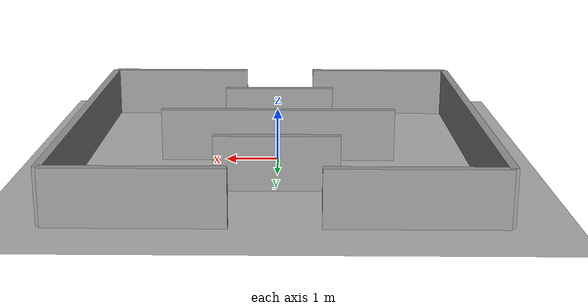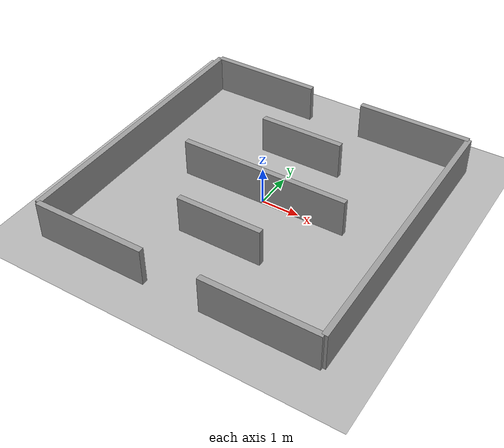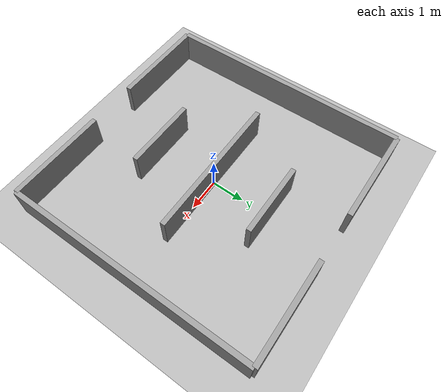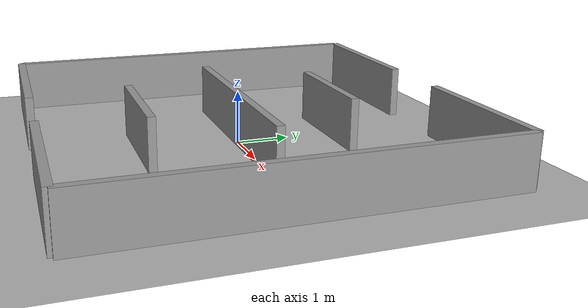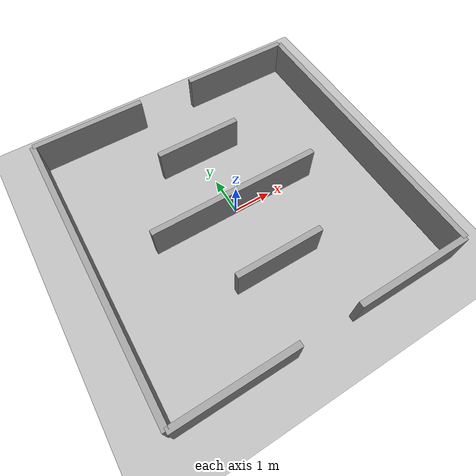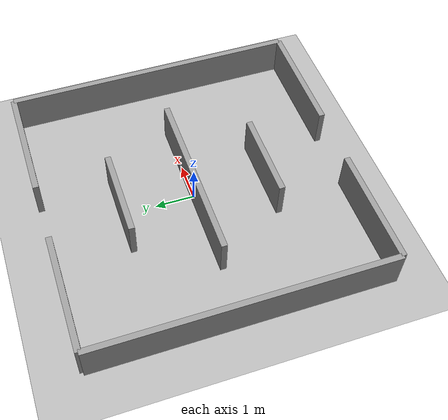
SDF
<?xml version="1.0" ?>
<sdf version="1.10">
  <world name="maze_world">

    <plugin
      filename="gz-sim-physics-system"
      name="gz::sim::systems::Physics">
    </plugin>

    <plugin
      filename="gz-sim-user-commands-system"
      name="gz::sim::systems::UserCommands">
    </plugin>

    <plugin
      filename="gz-sim-scene-broadcaster-system"
      name="gz::sim::systems::SceneBroadcaster">
    </plugin>

    <!-- Lighting -->
    <light type="directional" name="sun">
      <pose>0 0 10 0 0 0</pose>
      <diffuse>0.8 0.8 0.8 1</diffuse>
      <specular>0.2 0.2 0.2 1</specular>
      <direction>-0.5 0.1 -0.9</direction>
    </light>

    <!-- Ground plane -->
    <model name="ground_plane">
      <static>true</static>
      <link name="link">
        <collision name="collision">
          <geometry>
            <plane><normal>0 0 1</normal></plane>
          </geometry>
        </collision>
        <visual name="visual">
          <geometry>
            <plane>
              <normal>0 0 1</normal>
              <size>60 60</size>
            </plane>
          </geometry>
          <material>
            <diffuse>0.7 0.7 0.7 1</diffuse>
          </material>
        </visual>
      </link>
    </model>

    <!-- Maze walls -->
    <!-- Top Left Wall -->
    <model name="wall_top_left">
      <static>true</static>
      <pose>-2.25 3.75 0.5 0 0 0</pose>
      <link name="link">
        <collision name="collision">
          <geometry>
            <box><size>3.0 0.15 1</size></box>
          </geometry>
        </collision>
        <visual name="visual">
          <geometry>
            <box><size>3.0 0.15 1</size></box>
          </geometry>
          <material><diffuse>0.6 0.6 0.6 1</diffuse></material>
        </visual>
      </link>
    </model>

    <!-- Top Right Wall -->
    <model name="wall_top_right">
      <static>true</static>
      <pose>2.25 3.75 0.5 0 0 0</pose>
      <link name="link">
        <collision name="collision">
          <geometry>
            <box><size>3.0 0.15 1</size></box>
          </geometry>
        </collision>
        <visual name="visual">
          <geometry>
            <box><size>3.0 0.15 1</size></box>
          </geometry>
          <material><diffuse>0.6 0.6 0.6 1</diffuse></material>
        </visual>
      </link>
    </model>

    <!-- Bottom Left Wall -->
    <model name="wall_bottom_left">
      <static>true</static>
      <pose>-2.25 -3.75 0.5 0 0 0</pose>
      <link name="link">
        <collision name="collision">
          <geometry>
            <box><size>3.0 0.15 1</size></box>
          </geometry>
        </collision>
        <visual name="visual">
          <geometry>
            <box><size>3.0 0.15 1</size></box>
          </geometry>
          <material><diffuse>0.6 0.6 0.6 1</diffuse></material>
        </visual>
      </link>
    </model>

    <!-- Bottom Right Wall -->
    <model name="wall_bottom_right">
      <static>true</static>
      <pose>2.25 -3.75 0.5 0 0 0</pose>
      <link name="link">
        <collision name="collision">
          <geometry>
            <box><size>3.0 0.15 1</size></box>
          </geometry>
        </collision>
        <visual name="visual">
          <geometry>
            <box><size>3.0 0.15 1</size></box>
          </geometry>
          <material><diffuse>0.6 0.6 0.6 1</diffuse></material>
        </visual>
      </link>
    </model>

    <!-- Left Wall -->
    <model name="wall_left">
      <static>true</static>
      <pose>-3.75 0 0.5 0 0 0</pose>
      <link name="link">
        <collision name="collision">
          <geometry>
            <box><size>0.15 7.5 1</size></box>
          </geometry>
        </collision>
        <visual name="visual">
          <geometry>
            <box><size>0.15 7.5 1</size></box>
          </geometry>
          <material><diffuse>0.6 0.6 0.6 1</diffuse></material>
        </visual>
      </link>
    </model>

    <!-- Right Wall -->
    <model name="wall_right">
      <static>true</static>
      <pose>3.75 0 0.5 0 0 0</pose>
      <link name="link">
        <collision name="collision">
          <geometry>
            <box><size>0.15 7.5 1</size></box>
          </geometry>
        </collision>
        <visual name="visual">
          <geometry>
            <box><size>0.15 7.5 1</size></box>
          </geometry>
          <material><diffuse>0.6 0.6 0.6 1</diffuse></material>
        </visual>
      </link>
    </model>

    <!-- Inner Wall 1 -->
    <model name="wall_inner1">
      <static>true</static>
      <pose>0 0 0.5 0 0 0</pose>
      <link name="link">
        <collision name="collision">
          <geometry>
            <box><size>4.5 0.15 1</size></box>
          </geometry>
        </collision>
        <visual name="visual">
          <geometry>
            <box><size>4.5 0.15 1</size></box>
          </geometry>
          <material><diffuse>0.6 0.6 0.6 1</diffuse></material>
        </visual>
      </link>
    </model>

    <!-- Inner Wall 2 -->
    <model name="wall_inner2">
      <static>true</static>
      <pose>0 1.875 0.5 0 0 0</pose>
      <link name="link">
        <collision name="collision">
          <geometry>
            <box><size>2.25 0.15 1</size></box>
          </geometry>
        </collision>
        <visual name="visual">
          <geometry>
            <box><size>2.25 0.15 1</size></box>
          </geometry>
          <material><diffuse>0.6 0.6 0.6 1</diffuse></material>
        </visual>
      </link>
    </model>

    <!-- Inner Wall 3 -->
    <model name="wall_inner3">
      <static>true</static>
      <pose>0 -1.875 0.5 0 0 0</pose>
      <link name="link">
        <collision name="collision">
          <geometry>
            <box><size>2.25 0.15 1</size></box>
          </geometry>
        </collision>
        <visual name="visual">
          <geometry>
            <box><size>2.25 0.15 1</size></box>
          </geometry>
          <material><diffuse>0.6 0.6 0.6 1</diffuse></material>
        </visual>
      </link>
    </model>

</world>
</sdf>
